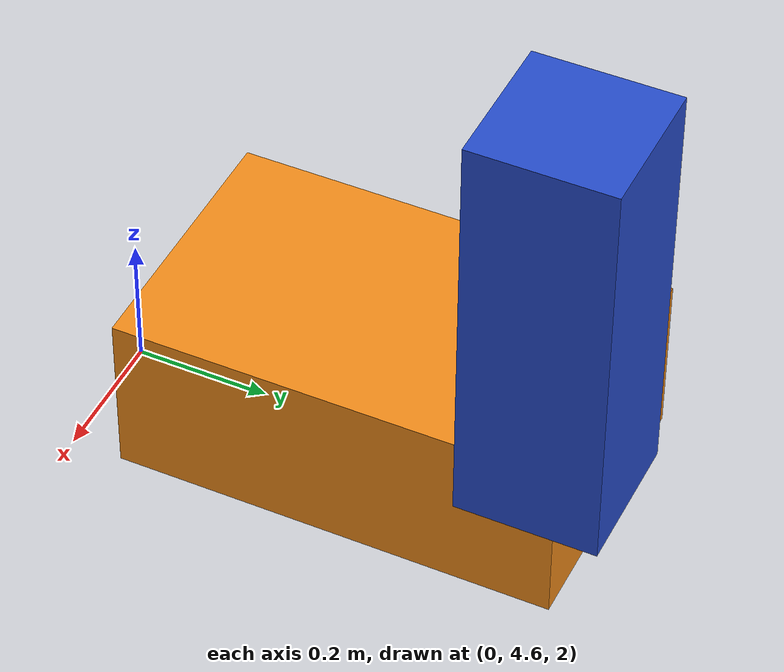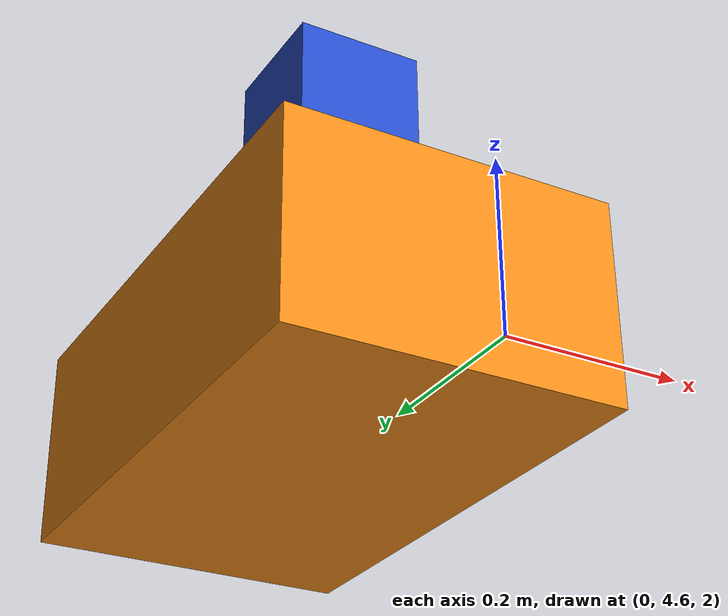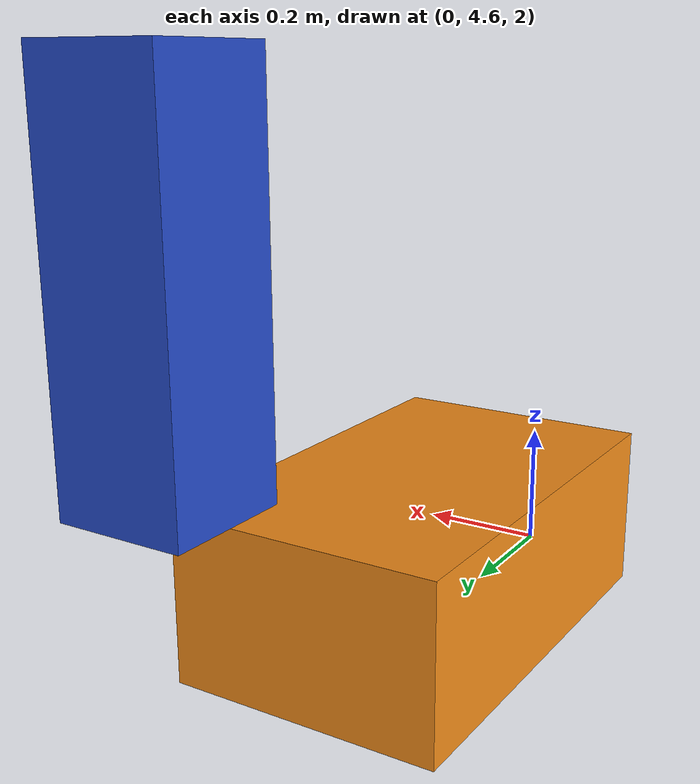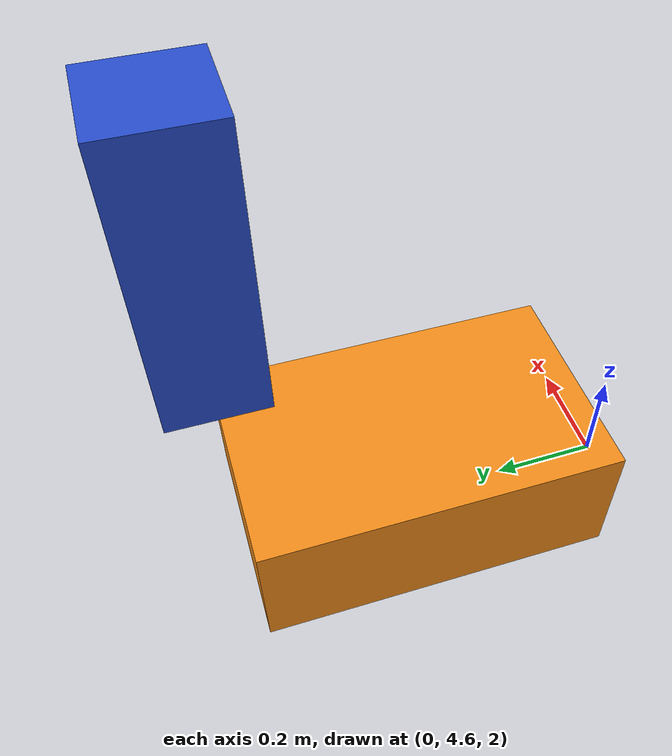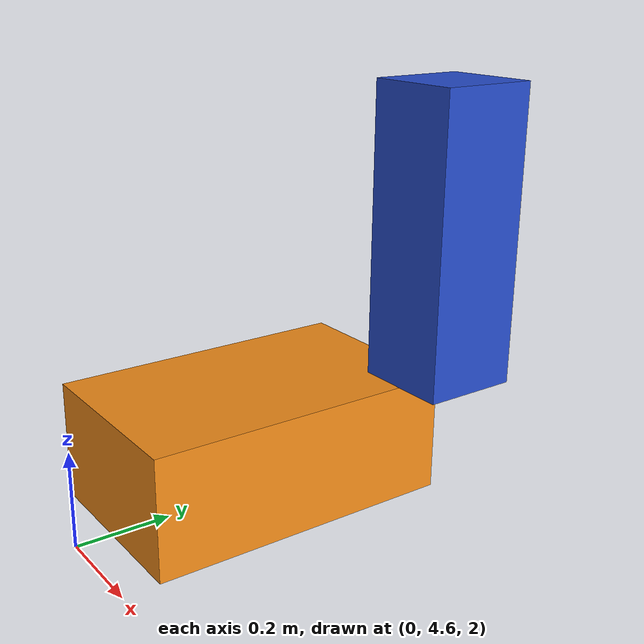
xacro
<?xml version="1.0"?>
<!-- Revolute-Revolute Manipulator -->
<robot name="gztest" xmlns:xacro="http://www.ros.org/wiki/xacro">

 <gazebo>
	<plugin name="robot_cog" filename="librobot_cog.so"/>
  </gazebo>

  <!-- Constants for robot dimensions -->
  <xacro:property name="PI" value="3.1415926535897931"/>
  <xacro:property name="mass" value="25" /> <!-- arbitrary value for mass -->
  <xacro:property name="width_body" value="0.4" /> <!-- body width -->
  <xacro:property name="height_body" value="0.25" /> <!-- body height -->
  <xacro:property name="length_body" value="0.65" /> <!-- body length -->

  <!-- Used for fixing robot to Gazebo 'base_link' -->
  <link name="world"/>

  <joint name="worldframe" type="floating">
    <parent link="world"/>
    <child link="body"/>
    <origin xyz="0 5 2" rpy="0 0 0"/>
  </joint>

  <!-- Base Link -->
  <link name="body">
    <collision>
      <origin xyz="0 0 ${height_body/2}" rpy="0 0 0"/>
      <geometry>
	<box size="${width_body} ${length_body} ${height_body}"/>
      </geometry>
    </collision>

    <visual>
      <origin xyz="0 0 ${height_body/2}" rpy="0 0 0"/>
      <geometry>
	<box size="${width_body} ${length_body} ${height_body}"/>
      </geometry>
      <material name="orange"/>
    </visual>

    <inertial>
      <origin xyz="0 0 ${height_body/2}" rpy="0 0 0"/>
      <mass value="${mass}"/>
      <inertia
	  ixx="${mass / 12.0 * (length_body*length_body + height_body*height_body)}" ixy="0.0" ixz="0.0"
	  iyy="${mass / 12.0 * (height_body*height_body + width_body*width_body)}" iyz="0.0"
	  izz="${mass / 12.0 * (width_body*width_body + length_body*length_body)}"/>
    </inertial>
  </link>

  <joint name="armjoint" type="continuous">
	<parent link="body"/>
	<child link="arm"/>
	<origin xyz="${width_body/2} ${length_body/2} ${height_body}" rpy="0 0 0"/>
	<axis xyz="1 0 0"/>
  </joint>

  <link name="arm">
	<collision>
		<origin xyz="0 0 0.3" rpy="0 0 0"/>
		<geometry>
			<box size="0.2 0.2 0.6"/>
		</geometry>
	</collision>

	<visual>
		<origin xyz="0 0 0.3" rpy="0 0 0"/>
		<geometry>
			<box size="0.2 0.2 0.6"/>
		</geometry>
		<material name="blue"/>
	</visual>

	<inertial>
		<origin xyz="0 0 0.3" rpy="0 0 0"/>
		<mass value="3"/>
		<inertia
			ixx="${3/12*(0.2*0.2+0.6*0.6)}" ixy="0" ixz="0"
			iyy="${3/12*(0.2*0.2+0.6*0.6)}" iyz="0"
			izz="${3/12*(0.2*0.2+0.2*0.2)}" />
	</inertial>
  </link>

  <gazebo reference="body">
    <material>Gazebo/Orange</material>
  </gazebo>

<gazebo reference="arm">
    <material>Gazebo/Blue</material>
  </gazebo>

</robot>
